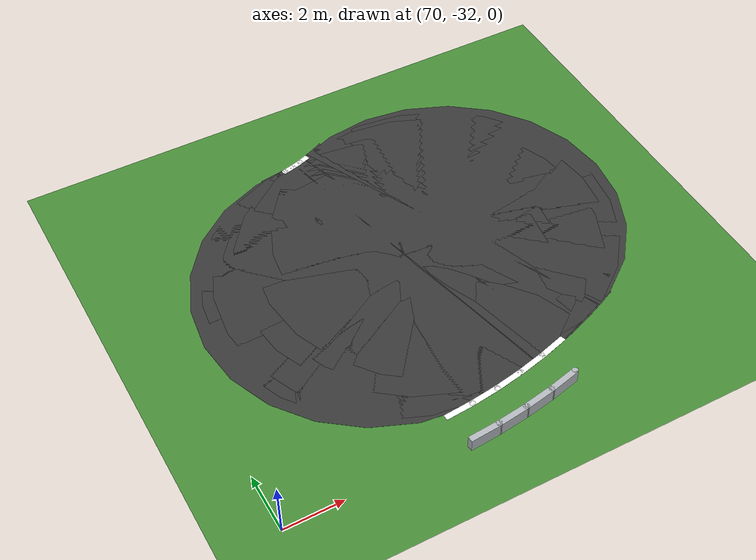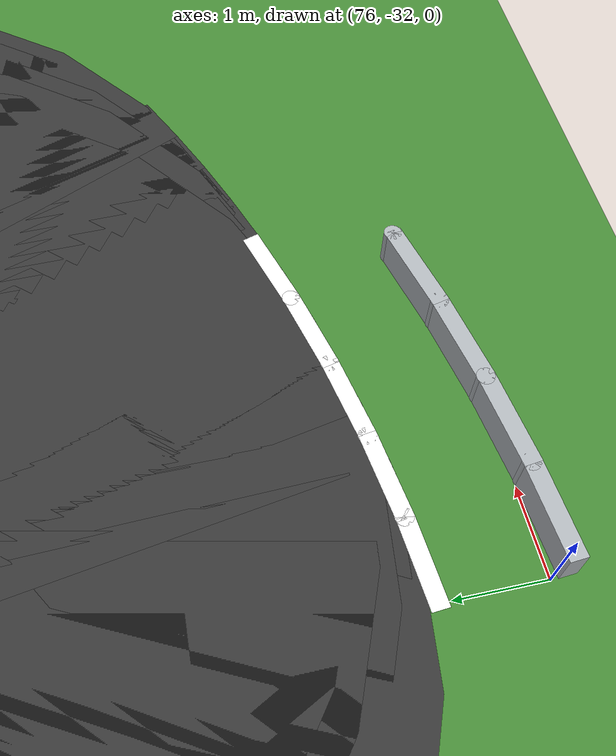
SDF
<sdf version="1.6">
 <world name="sem_silesia_ring_2026">
  <model name="ground_plane">
   <static>true</static>
   <link name="link">
    <collision name="collision">
     <geometry><plane><normal>0 0 1</normal><size>600 600</size></plane></geometry>
     <surface><friction><ode><mu>0.6</mu><mu2>0.6</mu2></ode></friction></surface>
    </collision>
    <visual name="visual">
     <geometry><plane><normal>0 0 1</normal><size>600 600</size></plane></geometry>
     <material><ambient>0.28 0.55 0.22 1</ambient><diffuse>0.28 0.55 0.22 1</diffuse></material>
    </visual>
   </link>
  </model>
  <model name="road_R_s3">
   <static>true</static>
   <pose>76.5234 -24.9068 0.0030 0 0 0.1222</pose>
   <link name="link">
    <visual name="v">
     <geometry><box><size>0.6957 12.0000 0.0060</size></box></geometry>
     <material><ambient>0.22 0.22 0.22 1</ambient><diffuse>0.22 0.22 0.22 1</diffuse></material>
    </visual>
    <collision name="c">
     <geometry><box><size>0.6957 12.0000 0.0060</size></box></geometry>
     <surface><friction><ode><mu>0.9</mu><mu2>0.9</mu2></ode></friction></surface>
    </collision>
   </link>
  </model>
  <model name="road_R_jnt4">
   <static>true</static>
   <pose>76.7397 -24.8784 0.0030 0 0 0</pose>
   <link name="link">
    <visual name="v">
     <geometry><cylinder><radius>6.0000</radius><length>0.0060</length></cylinder></geometry>
     <material><ambient>0.22 0.22 0.22 1</ambient><diffuse>0.22 0.22 0.22 1</diffuse></material>
    </visual>
    <collision name="c">
     <geometry><cylinder><radius>6.0000</radius><length>0.0060</length></cylinder></geometry>
     <surface><friction><ode><mu>0.9</mu><mu2>0.9</mu2></ode></friction></surface>
    </collision>
   </link>
  </model>
  <model name="road_R_s4">
   <static>true</static>
   <pose>76.9554 -24.8461 0.0030 0 0 0.1571</pose>
   <link name="link">
    <visual name="v">
     <geometry><box><size>0.6957 12.0000 0.0060</size></box></geometry>
     <material><ambient>0.22 0.22 0.22 1</ambient><diffuse>0.22 0.22 0.22 1</diffuse></material>
    </visual>
    <collision name="c">
     <geometry><box><size>0.6957 12.0000 0.0060</size></box></geometry>
     <surface><friction><ode><mu>0.9</mu><mu2>0.9</mu2></ode></friction></surface>
    </collision>
   </link>
  </model>
  <model name="road_R_jnt5">
   <static>true</static>
   <pose>77.1706 -24.8101 0.0030 0 0 0</pose>
   <link name="link">
    <visual name="v">
     <geometry><cylinder><radius>6.0000</radius><length>0.0060</length></cylinder></geometry>
     <material><ambient>0.22 0.22 0.22 1</ambient><diffuse>0.22 0.22 0.22 1</diffuse></material>
    </visual>
    <collision name="c">
     <geometry><cylinder><radius>6.0000</radius><length>0.0060</length></cylinder></geometry>
     <surface><friction><ode><mu>0.9</mu><mu2>0.9</mu2></ode></friction></surface>
    </collision>
   </link>
  </model>
  <model name="road_R_s5">
   <static>true</static>
   <pose>77.3851 -24.7703 0.0030 0 0 0.1920</pose>
   <link name="link">
    <visual name="v">
     <geometry><box><size>0.6957 12.0000 0.0060</size></box></geometry>
     <material><ambient>0.22 0.22 0.22 1</ambient><diffuse>0.22 0.22 0.22 1</diffuse></material>
    </visual>
    <collision name="c">
     <geometry><box><size>0.6957 12.0000 0.0060</size></box></geometry>
     <surface><friction><ode><mu>0.9</mu><mu2>0.9</mu2></ode></friction></surface>
    </collision>
   </link>
  </model>
  <model name="road_R_jnt6">
   <static>true</static>
   <pose>77.5989 -24.7268 0.0030 0 0 0</pose>
   <link name="link">
    <visual name="v">
     <geometry><cylinder><radius>6.0000</radius><length>0.0060</length></cylinder></geometry>
     <material><ambient>0.22 0.22 0.22 1</ambient><diffuse>0.22 0.22 0.22 1</diffuse></material>
    </visual>
    <collision name="c">
     <geometry><cylinder><radius>6.0000</radius><length>0.0060</length></cylinder></geometry>
     <surface><friction><ode><mu>0.9</mu><mu2>0.9</mu2></ode></friction></surface>
    </collision>
   </link>
  </model>
  <model name="road_R_s6">
   <static>true</static>
   <pose>77.8119 -24.6796 0.0030 0 0 0.2269</pose>
   <link name="link">
    <visual name="v">
     <geometry><box><size>0.6957 12.0000 0.0060</size></box></geometry>
     <material><ambient>0.22 0.22 0.22 1</ambient><diffuse>0.22 0.22 0.22 1</diffuse></material>
    </visual>
    <collision name="c">
     <geometry><box><size>0.6957 12.0000 0.0060</size></box></geometry>
     <surface><friction><ode><mu>0.9</mu><mu2>0.9</mu2></ode></friction></surface>
    </collision>
   </link>
  </model>
  <model name="road_R_jnt7">
   <static>true</static>
   <pose>78.0240 -24.6287 0.0030 0 0 0</pose>
   <link name="link">
    <visual name="v">
     <geometry><cylinder><radius>6.0000</radius><length>0.0060</length></cylinder></geometry>
     <material><ambient>0.22 0.22 0.22 1</ambient><diffuse>0.22 0.22 0.22 1</diffuse></material>
    </visual>
    <collision name="c">
     <geometry><cylinder><radius>6.0000</radius><length>0.0060</length></cylinder></geometry>
     <surface><friction><ode><mu>0.9</mu><mu2>0.9</mu2></ode></friction></surface>
    </collision>
   </link>
  </model>
  <model name="road_R_s7">
   <static>true</static>
   <pose>78.2352 -24.5741 0.0030 0 0 0.2618</pose>
   <link name="link">
    <visual name="v">
     <geometry><box><size>0.6957 12.0000 0.0060</size></box></geometry>
     <material><ambient>0.22 0.22 0.22 1</ambient><diffuse>0.22 0.22 0.22 1</diffuse></material>
    </visual>
    <collision name="c">
     <geometry><box><size>0.6957 12.0000 0.0060</size></box></geometry>
     <surface><friction><ode><mu>0.9</mu><mu2>0.9</mu2></ode></friction></surface>
    </collision>
   </link>
  </model>
  <model name="road_R_jnt8">
   <static>true</static>
   <pose>78.4455 -24.5158 0.0030 0 0 0</pose>
   <link name="link">
    <visual name="v">
     <geometry><cylinder><radius>6.0000</radius><length>0.0060</length></cylinder></geometry>
     <material><ambient>0.22 0.22 0.22 1</ambient><diffuse>0.22 0.22 0.22 1</diffuse></material>
    </visual>
    <collision name="c">
     <geometry><cylinder><radius>6.0000</radius><length>0.0060</length></cylinder></geometry>
     <surface><friction><ode><mu>0.9</mu><mu2>0.9</mu2></ode></friction></surface>
    </collision>
   </link>
  </model>
  <model name="road_R_s8">
   <static>true</static>
   <pose>78.6546 -24.4538 0.0030 0 0 0.2967</pose>
   <link name="link">
    <visual name="v">
     <geometry><box><size>0.6957 12.0000 0.0060</size></box></geometry>
     <material><ambient>0.22 0.22 0.22 1</ambient><diffuse>0.22 0.22 0.22 1</diffuse></material>
    </visual>
    <collision name="c">
     <geometry><box><size>0.6957 12.0000 0.0060</size></box></geometry>
     <surface><friction><ode><mu>0.9</mu><mu2>0.9</mu2></ode></friction></surface>
    </collision>
   </link>
  </model>
  <model name="road_R_jnt9">
   <static>true</static>
   <pose>78.8627 -24.3882 0.0030 0 0 0</pose>
   <link name="link">
    <visual name="v">
     <geometry><cylinder><radius>6.0000</radius><length>0.0060</length></cylinder></geometry>
     <material><ambient>0.22 0.22 0.22 1</ambient><diffuse>0.22 0.22 0.22 1</diffuse></material>
    </visual>
    <collision name="c">
     <geometry><cylinder><radius>6.0000</radius><length>0.0060</length></cylinder></geometry>
     <surface><friction><ode><mu>0.9</mu><mu2>0.9</mu2></ode></friction></surface>
    </collision>
   </link>
  </model>
  <model name="road_R_s9">
   <static>true</static>
   <pose>79.0696 -24.3190 0.0030 0 0 0.3316</pose>
   <link name="link">
    <visual name="v">
     <geometry><box><size>0.6957 12.0000 0.0060</size></box></geometry>
     <material><ambient>0.22 0.22 0.22 1</ambient><diffuse>0.22 0.22 0.22 1</diffuse></material>
    </visual>
    <collision name="c">
     <geometry><box><size>0.6957 12.0000 0.0060</size></box></geometry>
     <surface><friction><ode><mu>0.9</mu><mu2>0.9</mu2></ode></friction></surface>
    </collision>
   </link>
  </model>
  <model name="road_R_jnt10">
   <static>true</static>
   <pose>79.2753 -24.2462 0.0030 0 0 0</pose>
   <link name="link">
    <visual name="v">
     <geometry><cylinder><radius>6.0000</radius><length>0.0060</length></cylinder></geometry>
     <material><ambient>0.22 0.22 0.22 1</ambient><diffuse>0.22 0.22 0.22 1</diffuse></material>
    </visual>
    <collision name="c">
     <geometry><cylinder><radius>6.0000</radius><length>0.0060</length></cylinder></geometry>
     <surface><friction><ode><mu>0.9</mu><mu2>0.9</mu2></ode></friction></surface>
    </collision>
   </link>
  </model>
  <model name="road_R_s10">
   <static>true</static>
   <pose>79.4796 -24.1698 0.0030 0 0 0.3665</pose>
   <link name="link">
    <visual name="v">
     <geometry><box><size>0.6957 12.0000 0.0060</size></box></geometry>
     <material><ambient>0.22 0.22 0.22 1</ambient><diffuse>0.22 0.22 0.22 1</diffuse></material>
    </visual>
    <collision name="c">
     <geometry><box><size>0.6957 12.0000 0.0060</size></box></geometry>
     <surface><friction><ode><mu>0.9</mu><mu2>0.9</mu2></ode></friction></surface>
    </collision>
   </link>
  </model>
  <model name="road_R_jnt11">
   <static>true</static>
   <pose>79.6826 -24.0898 0.0030 0 0 0</pose>
   <link name="link">
    <visual name="v">
     <geometry><cylinder><radius>6.0000</radius><length>0.0060</length></cylinder></geometry>
     <material><ambient>0.22 0.22 0.22 1</ambient><diffuse>0.22 0.22 0.22 1</diffuse></material>
    </visual>
    <collision name="c">
     <geometry><cylinder><radius>6.0000</radius><length>0.0060</length></cylinder></geometry>
     <surface><friction><ode><mu>0.9</mu><mu2>0.9</mu2></ode></friction></surface>
    </collision>
   </link>
  </model>
  <model name="road_R_s11">
   <static>true</static>
   <pose>79.8841 -24.0063 0.0030 0 0 0.4014</pose>
   <link name="link">
    <visual name="v">
     <geometry><box><size>0.6957 12.0000 0.0060</size></box></geometry>
     <material><ambient>0.22 0.22 0.22 1</ambient><diffuse>0.22 0.22 0.22 1</diffuse></material>
    </visual>
    <collision name="c">
     <geometry><box><size>0.6957 12.0000 0.0060</size></box></geometry>
     <surface><friction><ode><mu>0.9</mu><mu2>0.9</mu2></ode></friction></surface>
    </collision>
   </link>
  </model>
  <model name="road_R_jnt12">
   <static>true</static>
   <pose>80.0842 -23.9193 0.0030 0 0 0</pose>
   <link name="link">
    <visual name="v">
     <geometry><cylinder><radius>6.0000</radius><length>0.0060</length></cylinder></geometry>
     <material><ambient>0.22 0.22 0.22 1</ambient><diffuse>0.22 0.22 0.22 1</diffuse></material>
    </visual>
    <collision name="c">
     <geometry><cylinder><radius>6.0000</radius><length>0.0060</length></cylinder></geometry>
     <surface><friction><ode><mu>0.9</mu><mu2>0.9</mu2></ode></friction></surface>
    </collision>
   </link>
  </model>
  <model name="road_R_s12">
   <static>true</static>
   <pose>80.2827 -23.8288 0.0030 0 0 0.4363</pose>
   <link name="link">
    <visual name="v">
     <geometry><box><size>0.6957 12.0000 0.0060</size></box></geometry>
     <material><ambient>0.22 0.22 0.22 1</ambient><diffuse>0.22 0.22 0.22 1</diffuse></material>
    </visual>
    <collision name="c">
     <geometry><box><size>0.6957 12.0000 0.0060</size></box></geometry>
     <surface><friction><ode><mu>0.9</mu><mu2>0.9</mu2></ode></friction></surface>
    </collision>
   </link>
  </model>
  <model name="wl_Ro_s1">
   <static>true</static>
   <pose>76.4436 -30.8433 0.0050 0 0 0.0785</pose>
   <link name="link">
    <visual name="v">
     <geometry><box><size>1.0185 0.2000 0.0040</size></box></geometry>
     <material><ambient>1 1 1 1</ambient><diffuse>1 1 1 1</diffuse></material>
    </visual>
    <collision name="c">
     <geometry><box><size>1.0185 0.2000 0.0040</size></box></geometry>
     <surface><friction><ode><mu>0.9</mu><mu2>0.9</mu2></ode></friction></surface>
    </collision>
   </link>
  </model>
  <model name="wl_Ro_jnt2">
   <static>true</static>
   <pose>76.9233 -30.7992 0.0050 0 0 0</pose>
   <link name="link">
    <visual name="v">
     <geometry><cylinder><radius>0.1000</radius><length>0.0040</length></cylinder></geometry>
     <material><ambient>1 1 1 1</ambient><diffuse>1 1 1 1</diffuse></material>
    </visual>
    <collision name="c">
     <geometry><cylinder><radius>0.1000</radius><length>0.0040</length></cylinder></geometry>
     <surface><friction><ode><mu>0.9</mu><mu2>0.9</mu2></ode></friction></surface>
    </collision>
   </link>
  </model>
  <model name="wl_Ro_s2">
   <static>true</static>
   <pose>77.4017 -30.7426 0.0050 0 0 0.1309</pose>
   <link name="link">
    <visual name="v">
     <geometry><box><size>1.0185 0.2000 0.0040</size></box></geometry>
     <material><ambient>1 1 1 1</ambient><diffuse>1 1 1 1</diffuse></material>
    </visual>
    <collision name="c">
     <geometry><box><size>1.0185 0.2000 0.0040</size></box></geometry>
     <surface><friction><ode><mu>0.9</mu><mu2>0.9</mu2></ode></friction></surface>
    </collision>
   </link>
  </model>
  <model name="wl_Ro_jnt3">
   <static>true</static>
   <pose>77.8784 -30.6735 0.0050 0 0 0</pose>
   <link name="link">
    <visual name="v">
     <geometry><cylinder><radius>0.1000</radius><length>0.0040</length></cylinder></geometry>
     <material><ambient>1 1 1 1</ambient><diffuse>1 1 1 1</diffuse></material>
    </visual>
    <collision name="c">
     <geometry><cylinder><radius>0.1000</radius><length>0.0040</length></cylinder></geometry>
     <surface><friction><ode><mu>0.9</mu><mu2>0.9</mu2></ode></friction></surface>
    </collision>
   </link>
  </model>
  <model name="wl_Ro_s3">
   <static>true</static>
   <pose>78.3531 -30.5919 0.0050 0 0 0.1833</pose>
   <link name="link">
    <visual name="v">
     <geometry><box><size>1.0185 0.2000 0.0040</size></box></geometry>
     <material><ambient>1 1 1 1</ambient><diffuse>1 1 1 1</diffuse></material>
    </visual>
    <collision name="c">
     <geometry><box><size>1.0185 0.2000 0.0040</size></box></geometry>
     <surface><friction><ode><mu>0.9</mu><mu2>0.9</mu2></ode></friction></surface>
    </collision>
   </link>
  </model>
  <model name="wl_Ro_jnt4">
   <static>true</static>
   <pose>78.8256 -30.4979 0.0050 0 0 0</pose>
   <link name="link">
    <visual name="v">
     <geometry><cylinder><radius>0.1000</radius><length>0.0040</length></cylinder></geometry>
     <material><ambient>1 1 1 1</ambient><diffuse>1 1 1 1</diffuse></material>
    </visual>
    <collision name="c">
     <geometry><cylinder><radius>0.1000</radius><length>0.0040</length></cylinder></geometry>
     <surface><friction><ode><mu>0.9</mu><mu2>0.9</mu2></ode></friction></surface>
    </collision>
   </link>
  </model>
  <model name="wl_Ro_s4">
   <static>true</static>
   <pose>79.2954 -30.3916 0.0050 0 0 0.2356</pose>
   <link name="link">
    <visual name="v">
     <geometry><box><size>1.0185 0.2000 0.0040</size></box></geometry>
     <material><ambient>1 1 1 1</ambient><diffuse>1 1 1 1</diffuse></material>
    </visual>
    <collision name="c">
     <geometry><box><size>1.0185 0.2000 0.0040</size></box></geometry>
     <surface><friction><ode><mu>0.9</mu><mu2>0.9</mu2></ode></friction></surface>
    </collision>
   </link>
  </model>
  <model name="wl_Ro_jnt5">
   <static>true</static>
   <pose>79.7623 -30.2730 0.0050 0 0 0</pose>
   <link name="link">
    <visual name="v">
     <geometry><cylinder><radius>0.1000</radius><length>0.0040</length></cylinder></geometry>
     <material><ambient>1 1 1 1</ambient><diffuse>1 1 1 1</diffuse></material>
    </visual>
    <collision name="c">
     <geometry><cylinder><radius>0.1000</radius><length>0.0040</length></cylinder></geometry>
     <surface><friction><ode><mu>0.9</mu><mu2>0.9</mu2></ode></friction></surface>
    </collision>
   </link>
  </model>
  <model name="wl_Ro_s5">
   <static>true</static>
   <pose>80.2259 -30.1423 0.0050 0 0 0.2880</pose>
   <link name="link">
    <visual name="v">
     <geometry><box><size>1.0185 0.2000 0.0040</size></box></geometry>
     <material><ambient>1 1 1 1</ambient><diffuse>1 1 1 1</diffuse></material>
    </visual>
    <collision name="c">
     <geometry><box><size>1.0185 0.2000 0.0040</size></box></geometry>
     <surface><friction><ode><mu>0.9</mu><mu2>0.9</mu2></ode></friction></surface>
    </collision>
   </link>
  </model>
  <model name="wl_Ri_jnt4">
   <static>true</static>
   <pose>76.3722 -18.9558 0.0050 0 0 0</pose>
   <link name="link">
    <visual name="v">
     <geometry><cylinder><radius>0.1000</radius><length>0.0040</length></cylinder></geometry>
     <material><ambient>1 1 1 1</ambient><diffuse>1 1 1 1</diffuse></material>
    </visual>
    <collision name="c">
     <geometry><cylinder><radius>0.1000</radius><length>0.0040</length></cylinder></geometry>
     <surface><friction><ode><mu>0.9</mu><mu2>0.9</mu2></ode></friction></surface>
    </collision>
   </link>
  </model>
  <model name="wl_Ri_s4">
   <static>true</static>
   <pose>76.5407 -18.9176 0.0050 0 0 0.2356</pose>
   <link name="link">
    <visual name="v">
     <geometry><box><size>0.4008 0.2000 0.0040</size></box></geometry>
     <material><ambient>1 1 1 1</ambient><diffuse>1 1 1 1</diffuse></material>
    </visual>
    <collision name="c">
     <geometry><box><size>0.4008 0.2000 0.0040</size></box></geometry>
     <surface><friction><ode><mu>0.9</mu><mu2>0.9</mu2></ode></friction></surface>
    </collision>
   </link>
  </model>
  <model name="wl_Ri_jnt5">
   <static>true</static>
   <pose>76.7082 -18.8751 0.0050 0 0 0</pose>
   <link name="link">
    <visual name="v">
     <geometry><cylinder><radius>0.1000</radius><length>0.0040</length></cylinder></geometry>
     <material><ambient>1 1 1 1</ambient><diffuse>1 1 1 1</diffuse></material>
    </visual>
    <collision name="c">
     <geometry><cylinder><radius>0.1000</radius><length>0.0040</length></cylinder></geometry>
     <surface><friction><ode><mu>0.9</mu><mu2>0.9</mu2></ode></friction></surface>
    </collision>
   </link>
  </model>
  <model name="wl_Ri_s5">
   <static>true</static>
   <pose>76.8745 -18.8282 0.0050 0 0 0.2880</pose>
   <link name="link">
    <visual name="v">
     <geometry><box><size>0.4008 0.2000 0.0040</size></box></geometry>
     <material><ambient>1 1 1 1</ambient><diffuse>1 1 1 1</diffuse></material>
    </visual>
    <collision name="c">
     <geometry><box><size>0.4008 0.2000 0.0040</size></box></geometry>
     <surface><friction><ode><mu>0.9</mu><mu2>0.9</mu2></ode></friction></surface>
    </collision>
   </link>
  </model>
  <model name="wl_Ri_jnt6">
   <static>true</static>
   <pose>77.0395 -18.7770 0.0050 0 0 0</pose>
   <link name="link">
    <visual name="v">
     <geometry><cylinder><radius>0.1000</radius><length>0.0040</length></cylinder></geometry>
     <material><ambient>1 1 1 1</ambient><diffuse>1 1 1 1</diffuse></material>
    </visual>
    <collision name="c">
     <geometry><cylinder><radius>0.1000</radius><length>0.0040</length></cylinder></geometry>
     <surface><friction><ode><mu>0.9</mu><mu2>0.9</mu2></ode></friction></surface>
    </collision>
   </link>
  </model>
  <model name="wl_Ri_s6">
   <static>true</static>
   <pose>77.2031 -18.7214 0.0050 0 0 0.3403</pose>
   <link name="link">
    <visual name="v">
     <geometry><box><size>0.4008 0.2000 0.0040</size></box></geometry>
     <material><ambient>1 1 1 1</ambient><diffuse>1 1 1 1</diffuse></material>
    </visual>
    <collision name="c">
     <geometry><box><size>0.4008 0.2000 0.0040</size></box></geometry>
     <surface><friction><ode><mu>0.9</mu><mu2>0.9</mu2></ode></friction></surface>
    </collision>
   </link>
  </model>
  <model name="arm_Ro_s1">
   <static>true</static>
   <pose>76.5456 -32.1393 0.2250 0 0 0.0785</pose>
   <link name="link">
    <visual name="v">
     <geometry><box><size>1.0866 0.2000 0.4500</size></box></geometry>
     <material><ambient>0.70 0.72 0.74 1</ambient><diffuse>0.70 0.72 0.74 1</diffuse></material>
    </visual>
    <collision name="c">
     <geometry><box><size>1.0866 0.2000 0.4500</size></box></geometry>
     <surface><friction><ode><mu>0.9</mu><mu2>0.9</mu2></ode></friction></surface>
    </collision>
   </link>
  </model>
  <model name="arm_Ro_jnt2">
   <static>true</static>
   <pose>77.0592 -32.0921 0.2250 0 0 0</pose>
   <link name="link">
    <visual name="v">
     <geometry><cylinder><radius>0.1000</radius><length>0.4500</length></cylinder></geometry>
     <material><ambient>0.70 0.72 0.74 1</ambient><diffuse>0.70 0.72 0.74 1</diffuse></material>
    </visual>
    <collision name="c">
     <geometry><cylinder><radius>0.1000</radius><length>0.4500</length></cylinder></geometry>
     <surface><friction><ode><mu>0.9</mu><mu2>0.9</mu2></ode></friction></surface>
    </collision>
   </link>
  </model>
  <model name="arm_Ro_s2">
   <static>true</static>
   <pose>77.5714 -32.0315 0.2250 0 0 0.1309</pose>
   <link name="link">
    <visual name="v">
     <geometry><box><size>1.0866 0.2000 0.4500</size></box></geometry>
     <material><ambient>0.70 0.72 0.74 1</ambient><diffuse>0.70 0.72 0.74 1</diffuse></material>
    </visual>
    <collision name="c">
     <geometry><box><size>1.0866 0.2000 0.4500</size></box></geometry>
     <surface><friction><ode><mu>0.9</mu><mu2>0.9</mu2></ode></friction></surface>
    </collision>
   </link>
  </model>
  <model name="arm_Ro_jnt3">
   <static>true</static>
   <pose>78.0818 -31.9575 0.2250 0 0 0</pose>
   <link name="link">
    <visual name="v">
     <geometry><cylinder><radius>0.1000</radius><length>0.4500</length></cylinder></geometry>
     <material><ambient>0.70 0.72 0.74 1</ambient><diffuse>0.70 0.72 0.74 1</diffuse></material>
    </visual>
    <collision name="c">
     <geometry><cylinder><radius>0.1000</radius><length>0.4500</length></cylinder></geometry>
     <surface><friction><ode><mu>0.9</mu><mu2>0.9</mu2></ode></friction></surface>
    </collision>
   </link>
  </model>
  <model name="arm_Ro_s3">
   <static>true</static>
   <pose>78.5900 -31.8701 0.2250 0 0 0.1833</pose>
   <link name="link">
    <visual name="v">
     <geometry><box><size>1.0866 0.2000 0.4500</size></box></geometry>
     <material><ambient>0.70 0.72 0.74 1</ambient><diffuse>0.70 0.72 0.74 1</diffuse></material>
    </visual>
    <collision name="c">
     <geometry><box><size>1.0866 0.2000 0.4500</size></box></geometry>
     <surface><friction><ode><mu>0.9</mu><mu2>0.9</mu2></ode></friction></surface>
    </collision>
   </link>
  </model>
  <model name="arm_Ro_jnt4">
   <static>true</static>
   <pose>79.0959 -31.7695 0.2250 0 0 0</pose>
   <link name="link">
    <visual name="v">
     <geometry><cylinder><radius>0.1000</radius><length>0.4500</length></cylinder></geometry>
     <material><ambient>0.70 0.72 0.74 1</ambient><diffuse>0.70 0.72 0.74 1</diffuse></material>
    </visual>
    <collision name="c">
     <geometry><cylinder><radius>0.1000</radius><length>0.4500</length></cylinder></geometry>
     <surface><friction><ode><mu>0.9</mu><mu2>0.9</mu2></ode></friction></surface>
    </collision>
   </link>
  </model>
  <model name="arm_Ro_s4">
   <static>true</static>
   <pose>79.5989 -31.6557 0.2250 0 0 0.2356</pose>
   <link name="link">
    <visual name="v">
     <geometry><box><size>1.0866 0.2000 0.4500</size></box></geometry>
     <material><ambient>0.70 0.72 0.74 1</ambient><diffuse>0.70 0.72 0.74 1</diffuse></material>
    </visual>
    <collision name="c">
     <geometry><box><size>1.0866 0.2000 0.4500</size></box></geometry>
     <surface><friction><ode><mu>0.9</mu><mu2>0.9</mu2></ode></friction></surface>
    </collision>
   </link>
  </model>
  <model name="arm_Ro_jnt5">
   <static>true</static>
   <pose>80.0987 -31.5287 0.2250 0 0 0</pose>
   <link name="link">
    <visual name="v">
     <geometry><cylinder><radius>0.1000</radius><length>0.4500</length></cylinder></geometry>
     <material><ambient>0.70 0.72 0.74 1</ambient><diffuse>0.70 0.72 0.74 1</diffuse></material>
    </visual>
    <collision name="c">
     <geometry><cylinder><radius>0.1000</radius><length>0.4500</length></cylinder></geometry>
     <surface><friction><ode><mu>0.9</mu><mu2>0.9</mu2></ode></friction></surface>
    </collision>
   </link>
  </model>
 </world>
</sdf>
